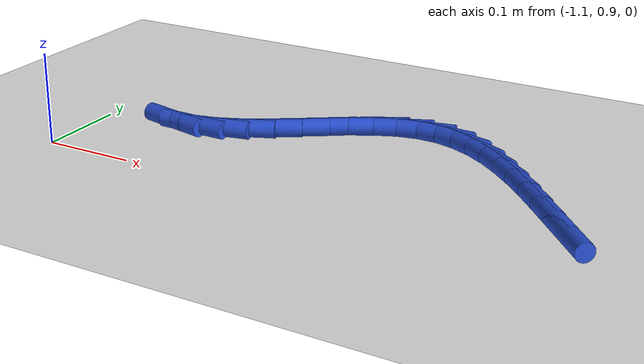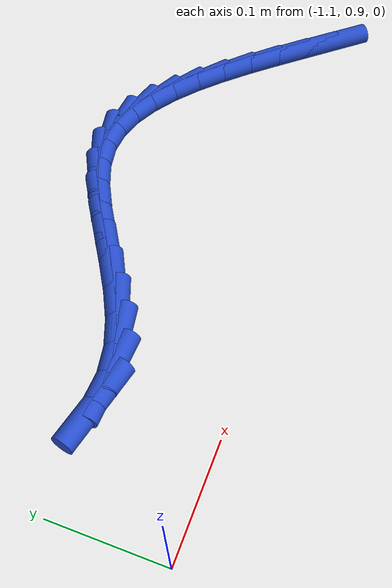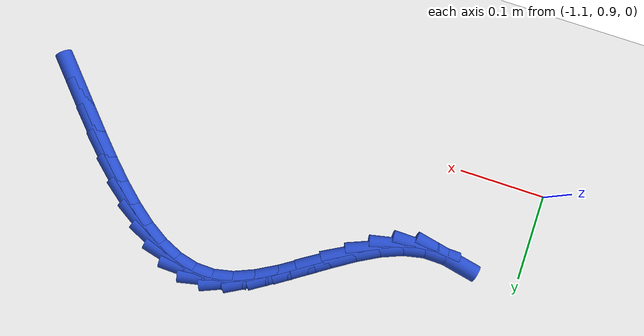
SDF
<sdf version="1.6">
 <world name="default">
  <model name="ground_plane">
   <static>1</static>
   <link name="link">
    <collision name="collision">
     <geometry><plane><normal>0 0 1</normal><size>100 100</size></plane></geometry>
     <surface><friction><ode><mu>100</mu><mu2>50</mu2></ode></friction></surface>
    </collision>
    <visual name="visual">
     <cast_shadows>0</cast_shadows>
     <geometry><plane><normal>0 0 1</normal><size>100 100</size></plane></geometry>
     <material>
      <script><uri>file://media/materials/scripts/gazebo.material</uri><name>Gazebo/WhiteGlow</name></script>
     </material>
    </visual>
   </link>
  </model>
  <model name="line">
   <link name="link_40">
    <pose>-0.542149823261442 0.9425240597316914 0.01 0 1.57 -0.8526468074825505</pose>
    <collision name="collision">
     <geometry><cylinder><radius>0.01</radius><length>0.08</length></cylinder></geometry>
    </collision>
    <visual name="visual">
     <material>
      <script><name>Gazebo/Blue</name><uri>file://media/materials/scripts/gazebo.material</uri></script>
     </material>
     <geometry><cylinder><radius>0.01</radius><length>0.08</length></cylinder></geometry>
    </visual>
   </link>
   <link name="link_41">
    <pose>-0.5635942918637209 0.9670657022260921 0.01 0 1.57 -0.8500380391556757</pose>
    <collision name="collision">
     <geometry><cylinder><radius>0.01</radius><length>0.08</length></cylinder></geometry>
    </collision>
    <visual name="visual">
     <material>
      <script><name>Gazebo/Blue</name><uri>file://media/materials/scripts/gazebo.material</uri></script>
     </material>
     <geometry><cylinder><radius>0.01</radius><length>0.08</length></cylinder></geometry>
    </visual>
   </link>
   <link name="link_42">
    <pose>-0.5850175358551398 0.9914543526653163 0.01 0 1.57 -0.8331693027049593</pose>
    <collision name="collision">
     <geometry><cylinder><radius>0.01</radius><length>0.08</length></cylinder></geometry>
    </collision>
    <visual name="visual">
     <material>
      <script><name>Gazebo/Blue</name><uri>file://media/materials/scripts/gazebo.material</uri></script>
     </material>
     <geometry><cylinder><radius>0.01</radius><length>0.08</length></cylinder></geometry>
    </visual>
   </link>
   <link name="link_43">
    <pose>-0.6064755018432245 1.0150670341614507 0.01 0 1.57 -0.8005950064335479</pose>
    <collision name="collision">
     <geometry><cylinder><radius>0.01</radius><length>0.08</length></cylinder></geometry>
    </collision>
    <visual name="visual">
     <material>
      <script><name>Gazebo/Blue</name><uri>file://media/materials/scripts/gazebo.material</uri></script>
     </material>
     <geometry><cylinder><radius>0.01</radius><length>0.08</length></cylinder></geometry>
    </visual>
   </link>
   <link name="link_44">
    <pose>-0.628024136435501 1.037280769826581 0.01 0 1.57 -0.7495209344546828</pose>
    <collision name="collision">
     <geometry><cylinder><radius>0.01</radius><length>0.08</length></cylinder></geometry>
    </collision>
    <visual name="visual">
     <material>
      <script><name>Gazebo/Blue</name><uri>file://media/materials/scripts/gazebo.material</uri></script>
     </material>
     <geometry><cylinder><radius>0.01</radius><length>0.08</length></cylinder></geometry>
    </visual>
   </link>
   <link name="link_45">
    <pose>-0.6497193862394959 1.0574725827727944 0.01 0 1.57 -0.6755385980376114</pose>
    <collision name="collision">
     <geometry><cylinder><radius>0.01</radius><length>0.08</length></cylinder></geometry>
    </collision>
    <visual name="visual">
     <material>
      <script><name>Gazebo/Blue</name><uri>file://media/materials/scripts/gazebo.material</uri></script>
     </material>
     <geometry><cylinder><radius>0.01</radius><length>0.08</length></cylinder></geometry>
    </visual>
   </link>
   <link name="link_46">
    <pose>-0.6716171978627345 1.0750194961121762 0.01 0 1.57 -0.572476379702755</pose>
    <collision name="collision">
     <geometry><cylinder><radius>0.01</radius><length>0.08</length></cylinder></geometry>
    </collision>
    <visual name="visual">
     <material>
      <script><name>Gazebo/Blue</name><uri>file://media/materials/scripts/gazebo.material</uri></script>
     </material>
     <geometry><cylinder><radius>0.01</radius><length>0.08</length></cylinder></geometry>
    </visual>
   </link>
   <link name="link_47">
    <pose>-0.6937735179127431 1.0892985329568132 0.01 0 1.57 -0.4330333503650212</pose>
    <collision name="collision">
     <geometry><cylinder><radius>0.01</radius><length>0.08</length></cylinder></geometry>
    </collision>
    <visual name="visual">
     <material>
      <script><name>Gazebo/Blue</name><uri>file://media/materials/scripts/gazebo.material</uri></script>
     </material>
     <geometry><cylinder><radius>0.01</radius><length>0.08</length></cylinder></geometry>
    </visual>
   </link>
   <link name="link_48">
    <pose>-0.7162442929970478 1.0996867164187922 0.01 0 1.57 -0.2517272482778761</pose>
    <collision name="collision">
     <geometry><cylinder><radius>0.01</radius><length>0.08</length></cylinder></geometry>
    </collision>
    <visual name="visual">
     <material>
      <script><name>Gazebo/Blue</name><uri>file://media/materials/scripts/gazebo.material</uri></script>
     </material>
     <geometry><cylinder><radius>0.01</radius><length>0.08</length></cylinder></geometry>
    </visual>
   </link>
   <link name="link_49">
    <pose>-0.7390854697231748 1.1055610696101987 0.01 0 1.57 -0.031687906417101355</pose>
    <collision name="collision">
     <geometry><cylinder><radius>0.01</radius><length>0.08</length></cylinder></geometry>
    </collision>
    <visual name="visual">
     <material>
      <script><name>Gazebo/Blue</name><uri>file://media/materials/scripts/gazebo.material</uri></script>
     </material>
     <geometry><cylinder><radius>0.01</radius><length>0.08</length></cylinder></geometry>
    </visual>
   </link>
   <link name="link_50">
    <pose>-0.7623529946986495 1.1062986156431194 0.01 0 1.57 0.20481816619805995</pose>
    <collision name="collision">
     <geometry><cylinder><radius>0.01</radius><length>0.08</length></cylinder></geometry>
    </collision>
    <visual name="visual">
     <material>
      <script><name>Gazebo/Blue</name><uri>file://media/materials/scripts/gazebo.material</uri></script>
     </material>
     <geometry><cylinder><radius>0.01</radius><length>0.08</length></cylinder></geometry>
    </visual>
   </link>
   <link name="link_51">
    <pose>-0.7860967618240448 1.1013662960769313 0.01 0 1.57 0.39125382967165334</pose>
    <collision name="collision">
     <geometry><cylinder><radius>0.01</radius><length>0.08</length></cylinder></geometry>
    </collision>
    <visual name="visual">
     <material>
      <script><name>Gazebo/Blue</name><uri>file://media/materials/scripts/gazebo.material</uri></script>
     </material>
     <geometry><cylinder><radius>0.01</radius><length>0.08</length></cylinder></geometry>
    </visual>
   </link>
   <link name="link_52">
    <pose>-0.8102888861247144 1.0913865281522825 0.01 0 1.57 0.5058451874363917</pose>
    <collision name="collision">
     <geometry><cylinder><radius>0.01</radius><length>0.08</length></cylinder></geometry>
    </collision>
    <visual name="visual">
     <material>
      <script><name>Gazebo/Blue</name><uri>file://media/materials/scripts/gazebo.material</uri></script>
     </material>
     <geometry><cylinder><radius>0.01</radius><length>0.08</length></cylinder></geometry>
    </visual>
   </link>
   <link name="link_53">
    <pose>-0.8348475408704312 1.0777830827756736 0.01 0 1.57 0.5661136860215664</pose>
    <collision name="collision">
     <geometry><cylinder><radius>0.01</radius><length>0.08</length></cylinder></geometry>
    </collision>
    <visual name="visual">
     <material>
      <script><name>Gazebo/Blue</name><uri>file://media/materials/scripts/gazebo.material</uri></script>
     </material>
     <geometry><cylinder><radius>0.01</radius><length>0.08</length></cylinder></geometry>
    </visual>
   </link>
   <link name="link_54">
    <pose>-0.8596898151124833 1.0619958379018049 0.01 0 1.57 0.5834508233717084</pose>
    <collision name="collision">
     <geometry><cylinder><radius>0.01</radius><length>0.08</length></cylinder></geometry>
    </collision>
    <visual name="visual">
     <material>
      <script><name>Gazebo/Blue</name><uri>file://media/materials/scripts/gazebo.material</uri></script>
     </material>
     <geometry><cylinder><radius>0.01</radius><length>0.08</length></cylinder></geometry>
    </visual>
   </link>
   <link name="link_55">
    <pose>-0.8847327979021584 1.0454646714853775 0.01 0 1.57 0.5617290595081829</pose>
    <collision name="collision">
     <geometry><cylinder><radius>0.01</radius><length>0.08</length></cylinder></geometry>
    </collision>
    <visual name="visual">
     <material>
      <script><name>Gazebo/Blue</name><uri>file://media/materials/scripts/gazebo.material</uri></script>
     </material>
     <geometry><cylinder><radius>0.01</radius><length>0.08</length></cylinder></geometry>
    </visual>
   </link>
   <link name="link_56">
    <pose>-0.909893578290744 1.0296294614810921 0.01 0 1.57 0.49800855048501697</pose>
    <collision name="collision">
     <geometry><cylinder><radius>0.01</radius><length>0.08</length></cylinder></geometry>
    </collision>
    <visual name="visual">
     <material>
      <script><name>Gazebo/Blue</name><uri>file://media/materials/scripts/gazebo.material</uri></script>
     </material>
     <geometry><cylinder><radius>0.01</radius><length>0.08</length></cylinder></geometry>
    </visual>
   </link>
   <link name="link_57">
    <pose>-0.9350892453295286 1.0159300858436504 0.01 0 1.57 0.3827191344237403</pose>
    <collision name="collision">
     <geometry><cylinder><radius>0.01</radius><length>0.08</length></cylinder></geometry>
    </collision>
    <visual name="visual">
     <material>
      <script><name>Gazebo/Blue</name><uri>file://media/materials/scripts/gazebo.material</uri></script>
     </material>
     <geometry><cylinder><radius>0.01</radius><length>0.08</length></cylinder></geometry>
    </visual>
   </link>
   <link name="link_58">
    <pose>-0.9602368880697992 1.005806422527753 0.01 0 1.57 0.20195522690429837</pose>
    <collision name="collision">
     <geometry><cylinder><radius>0.01</radius><length>0.08</length></cylinder></geometry>
    </collision>
    <visual name="visual">
     <material>
      <script><name>Gazebo/Blue</name><uri>file://media/materials/scripts/gazebo.material</uri></script>
     </material>
     <geometry><cylinder><radius>0.01</radius><length>0.08</length></cylinder></geometry>
    </visual>
   </link>
   <link name="link_59">
    <pose>-0.985254494884375 1.000684157219472 0.01 0 1.57 -0.018389282301375227</pose>
    <collision name="collision">
     <geometry><cylinder><radius>0.01</radius><length>0.08</length></cylinder></geometry>
    </collision>
    <visual name="visual">
     <material>
      <script><name>Gazebo/Blue</name><uri>file://media/materials/scripts/gazebo.material</uri></script>
     </material>
     <geometry><cylinder><radius>0.01</radius><length>0.08</length></cylinder></geometry>
    </visual>
   </link>
   <link name="link_60">
    <pose>-1.0101137654566448 1.00114135290096 0.01 0 1.57 -0.21102950709271842</pose>
    <collision name="collision">
     <geometry><cylinder><radius>0.01</radius><length>0.08</length></cylinder></geometry>
    </collision>
    <visual name="visual">
     <material>
      <script><name>Gazebo/Blue</name><uri>file://media/materials/scripts/gazebo.material</uri></script>
     </material>
     <geometry><cylinder><radius>0.01</radius><length>0.08</length></cylinder></geometry>
    </visual>
   </link>
  </model>
 </world>
</sdf>
